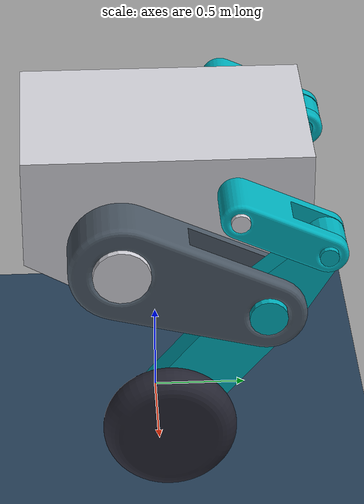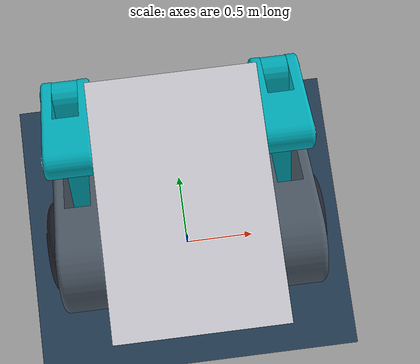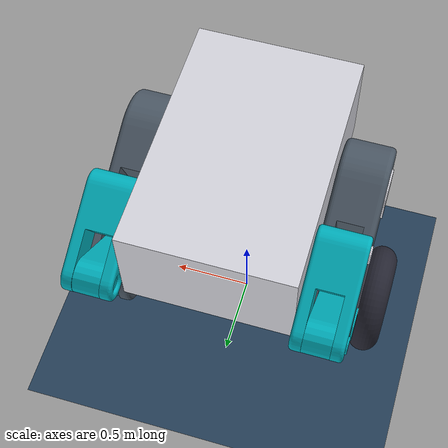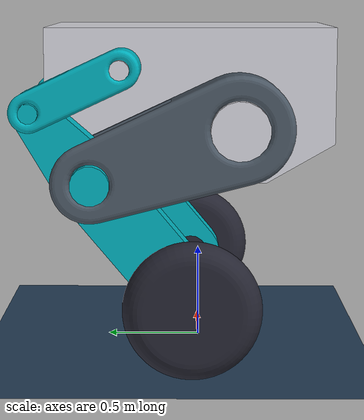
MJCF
<mujoco model="wheeled_legged">
    <option gravity="0 0 -9.81" timestep="0.002"/>

    <visual>
        <headlight diffuse="0.6 0.6 0.6" ambient="0.3 0.3 0.3" specular="0 0 0"/>
        <rgba haze="0.15 0.25 0.35 1"/>
        <global azimuth="120" elevation="-20" offwidth="1920" offheight="1080"/>
        <quality shadowsize="4096" offsamples="8"/>
        <map force="0.01" zfar="40"/>
    </visual>

    <asset>
        <mesh name="wheel" file="wheel.STL" scale="0.1 0.1 0.1"/>
        <mesh name="base" file="base.STL" scale="0.1 0.1 0.1"/>
        <mesh name="upperleg" file="upperleg.STL" scale="0.1 0.1 0.1"/>
        <mesh name="lowerleg" file="lowerleg.STL" scale="0.1 0.1 0.1"/>
        <mesh name="support" file="support.STL" scale="0.1 0.1 0.1"/>

        <texture type="skybox" builtin="gradient" rgb1="0.3 0.5 0.7" rgb2="0 0 0" width="512" height="3072"/>
        <texture type="2d" name="groundplane" builtin="checker" mark="edge" rgb1="0.2 0.3 0.4" rgb2="0.1 0.2 0.3" markrgb="0.8 0.8 0.8" width="300" height="300"/>
        <material name="groundplane" texture="groundplane" texuniform="true" texrepeat="4 4" reflectance="0.15"/>
    </asset>

    <default>
        <default class="no_contact">
            <geom contype="0" conaffinity="0" group="2"/>
        </default>
        <default class="contact">
            <geom contype="1" conaffinity="1" group="2"/>
        </default>
    </default>

    <worldbody>
        <light pos="0 0 6" dir="0 0 -1" directional="true" diffuse="0.5 0.5 0.5"/>
        <light pos="4 -4 5" dir="-0.6 0.6 -1" directional="false" diffuse="0.4 0.4 0.4" castshadow="true"/>
        <geom name="floor" size="0 0 0.25" type="plane" material="groundplane" class="contact"
              friction="1.2 0.005 0.0001"/>

        <body name="base" pos="0 0 1.437">
            <geom name="base" type="mesh" mesh="base" mass="92.7" rgba="0.85 0.85 0.88 1"
                  quat="0.70710678118655 0.70710678118655 0 0" class="contact"/>
            <joint name="root" type="free"/>
            <camera name="track" mode="trackcom" pos="2.8 -2.3 1.0" xyaxes="0.635 0.773 0 -0.206 0.169 0.964"/>
            <camera name="side" mode="trackcom" pos="3.2 0 0.55" xyaxes="0 1 0 -0.169 0 0.986"/>

            <body name="left_leg" pos="0.65 -0.2 -0.2">
                <geom type="mesh" mesh="upperleg" mass="12.5" class="no_contact" rgba="0.3 0.35 0.4 1"/>
                <joint name="left_upperleg_joint" type="hinge" axis="1 0 0" damping="5" armature="0.2"/>
                <body name="left_lowerleg" pos="-0.08 0.752 -0.273">
                    <geom type="mesh" mesh="lowerleg" mass="7.5" class="no_contact" rgba="0 0.7 0.75 1"/>
                    <joint name="left_lowerleg_joint" type="hinge" axis="1 0 0" damping="5" armature="0.2"/>
                    <body name="left_wheel" pos="0.2 -0.513 -0.614">
                        <geom type="mesh" mesh="wheel" mass="5.6" class="contact" rgba="0.15 0.15 0.2 1"
                              friction="1.2 0.005 0.0001"/>
                        <joint name="left_wheel_joint" type="hinge" axis="1 0 0" damping="0.5" armature="0.5"/>
                    </body>
                </body>
            </body>

            <body name="right_leg" pos="-0.65 -0.2 -0.2">
                <geom type="mesh" mesh="upperleg" mass="12.5" class="no_contact" rgba="0.3 0.35 0.4 1"/>
                <joint name="right_upperleg_joint" type="hinge" axis="1 0 0" damping="5" armature="0.2"/>
                <body name="right_lowerleg" pos="0.08 0.752 -0.273" quat="0 0. 0.64073159 0.76776496">
                    <geom type="mesh" mesh="lowerleg" mass="7.5" class="no_contact" rgba="0 0.7 0.75 1"/>
                    <joint name="right_lowerleg_joint" type="hinge" axis="-1 0 0" damping="5" armature="0.2"/>
                    <body name="right_wheel" pos="0.2 -0.513 -0.614">
                        <geom type="mesh" mesh="wheel" mass="5.6" class="contact" rgba="0.15 0.15 0.2 1"
                              friction="1.2 0.005 0.0001"/>
                        <joint name="right_wheel_joint" type="hinge" axis="-1 0 0" damping="0.5" armature="0.5"/>
                    </body>
                </body>
            </body>

            <body name="right_support" pos="-0.65 0.4 0.1">
                <geom type="mesh" mesh="support" mass="3.0" class="no_contact" rgba="0 0.7 0.75 1"/>
                <joint name="right_support_joint" type="hinge" axis="1 0 0" damping="5" armature="0.2"/>
                <site name="right_support_site" size="0.1" group="3" pos="0 0.45315389351832 -0.21130913087035"/>
            </body>
            <body name="left_support" pos="0.65 0.4 0.1">
                <geom type="mesh" mesh="support" mass="3.0" class="no_contact" rgba="0 0.7 0.75 1"/>
                <joint name="left_support_joint" type="hinge" axis="1 0 0" damping="5" armature="0.2"/>
                <site name="left_support_site" size="0.1" group="3" pos="0 0.45315389351832 -0.21130913087035"/>
            </body>
        </body>
    </worldbody>

    <contact>
        <exclude body1="base" body2="right_leg"/>
        <exclude body1="base" body2="left_leg"/>
        <exclude body1="base" body2="right_support"/>
        <exclude body1="base" body2="left_support"/>
        <exclude body1="base" body2="left_lowerleg"/>
        <exclude body1="base" body2="right_lowerleg"/>
        <exclude body1="left_leg" body2="left_lowerleg"/>
        <exclude body1="right_leg" body2="right_lowerleg"/>
        <exclude body1="left_support" body2="left_lowerleg"/>
        <exclude body1="right_support" body2="right_lowerleg"/>
        <exclude body1="left_lowerleg" body2="left_wheel"/>
        <exclude body1="right_lowerleg" body2="right_wheel"/>
    </contact>
    <equality>
        <connect name="left_att" body1="left_support" body2="left_lowerleg" anchor="0 0.45315389351832 -0.21130913087035"/>
        <connect name="right_att" body1="right_support" body2="right_lowerleg" anchor="0 0.45315389351832 -0.21130913087035"/>
    </equality>

    <actuator>
        <position name="left_leg_actuator" joint="left_upperleg_joint" kp="4000" kv="200" ctrlrange="0 0.30"/>
        <position name="right_leg_actuator" joint="right_upperleg_joint" kp="4000" kv="200" ctrlrange="0 0.30"/>
        <motor name="left_wheel_actuator" joint="left_wheel_joint" gear="200" ctrlrange="-1 1"/>
        <motor name="right_wheel_actuator" joint="right_wheel_joint" gear="200" ctrlrange="-1 1"/>
    </actuator>

    <sensor>
        <framequat name="framequat" objname="base" objtype="xbody"/>
    </sensor>

    <keyframe>
        <key name="stand" qpos="0 0 1.437 1 0 0 0 0 0 0 0 0 0 0 0"/>
    </keyframe>
</mujoco>
